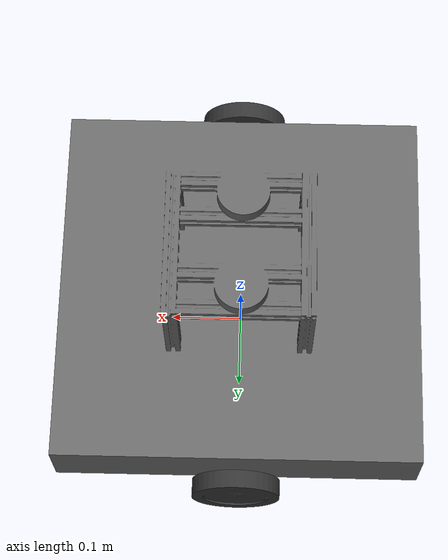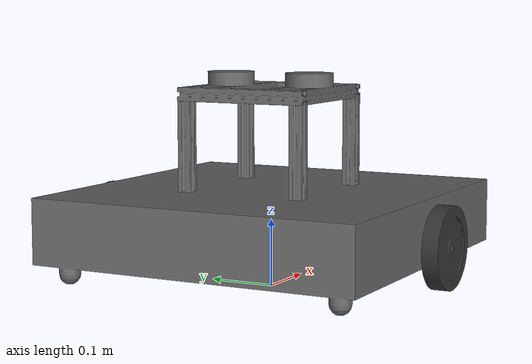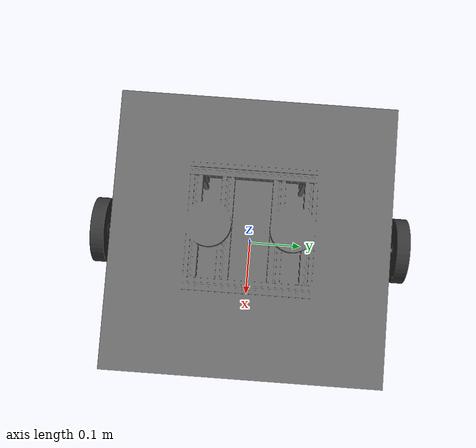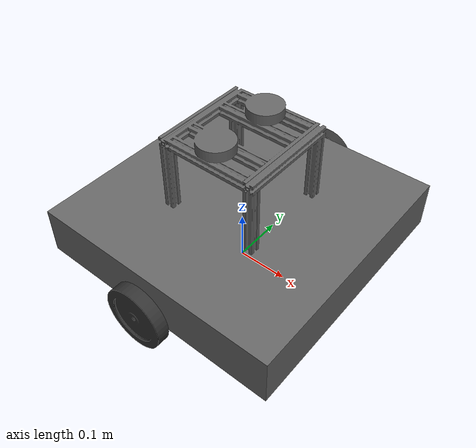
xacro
<?xml version="1.0"?>
<robot name="holo" xmlns:xacro="http://ros.org/wiki/xacro">

  <material name="black"><color rgba="0.15 0.15 0.15 1.0"/></material>
  <material name="dark_grey"><color rgba="0.2 0.2 0.2 1.0"/></material>
  <material name="light_grey"><color rgba="0.4 0.4 0.4 1.0"/></material>

  <link name="base_footprint"></link>
  <joint name="base_link_joint" type="fixed">
    <origin xyz="0 0 0.05" rpy="0 0 0" />
    <parent link="base_footprint"/>
    <child link="base_link"/>
  </joint>

  <link name="base_link">
    <inertial>
      <origin
        xyz="0.000663062226349709 0.000901948709669016 0.0518310748808297"
        rpy="0 0 0" />
      <mass value="1" />
      <inertia
        ixx="0.0005"
        ixy="0.2359267438"
        ixz="3.83933411877259E-15"
        iyy="0.0005"
        iyz="3.03157454020582E-18"
        izz="0.0005" />
    </inertial>
    <visual>
      <origin xyz="0 0 0" rpy="0 0 0" />
      <geometry>
        <mesh filename="package://non_description/meshes/base_link.STL" />
      </geometry>
      <material name="light_grey"/>
    </visual>
    <collision>
      <origin xyz="0 0 0" rpy="0 0 0" />
      <geometry>
        <mesh filename="package://non_description/meshes/base_link.STL" />
      </geometry>
    </collision>
  </link>

  <link name="left_wheel_link">
    <inertial>
      <origin xyz="-1.11022302462516E-16 -0.0099999999999999 0" rpy="0 0 0" />
      <mass value="0.172530421663568" />

      <origin xyz="0 5.5511E-17 2.7756E-17" rpy="0 0 0" />
      <mass value="0.23316" />
      <inertia
        ixx="0.00023384"
        ixy="1.8449E-18"
        ixz="5.5653E-21"
        iyy="0.00044999"
        iyz="-2.6244E-20"
        izz="0.00023384" />
    </inertial>
    <visual>
      <origin xyz="0 0 0" rpy="0 0 0" />
      <geometry>
        <mesh filename="package://non_description/meshes/left_wheel_link.STL" />
      </geometry>
      <material name="dark_grey"/>
    </visual>
    <collision>
      <origin xyz="0 0 0" rpy="0 0 0" />
      <geometry>
        <mesh filename="package://non_description/meshes/left_wheel_link.STL" />
      </geometry>
    </collision>
</link>
  <joint name="left_wheel_joint" type="continuous">
    <origin xyz="0.00068317 0.27589 0.029895" rpy="0 0 0" />
    <parent link="base_link" />
    <child link="left_wheel_link" />
    <axis xyz="0 -1 0" />
  </joint>
  <link name="right_wheel_link">
    <inertial>
      <origin xyz="1.1102E-16 -5.5511E-17 1.3878E-17" rpy="0 0 0" />
      <mass value="0.23316" />
      <inertia
        ixx="0.00023384"
        ixy="1.8559E-18"
        ixz="-4.9188E-21"
        iyy="0.00044999"
        iyz="-2.8705E-20"
        izz="0.00023384" />
    </inertial>
    <visual>
      <origin xyz="0 0 0" rpy="0 0 0" />
      <geometry>
        <mesh filename="package://non_description/meshes/right_wheel_link.STL" />
      </geometry>
      <material name="dark_grey"/>
    </visual>
    <collision>
      <origin xyz="0 0 0" rpy="0 0 0" />
      <geometry>
        <mesh filename="package://non_description/meshes/right_wheel_link.STL" />
      </geometry>
    </collision>
  </link>
  <joint name="right_wheel_joint" type="continuous">
    <origin xyz="0.00068317 -0.27411 0.029895" rpy="0 0 0" />
    <parent link="base_link" />
    <child link="right_wheel_link" />
    <axis
      xyz="0 -1 0" />
  </joint>

  <!-- Include controller plugin for Gazebo -->
  <xacro:include filename="$(find non_description)/urdf/non.gazebo" />

</robot>
